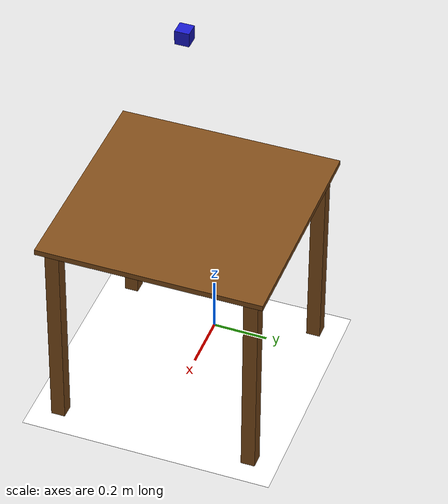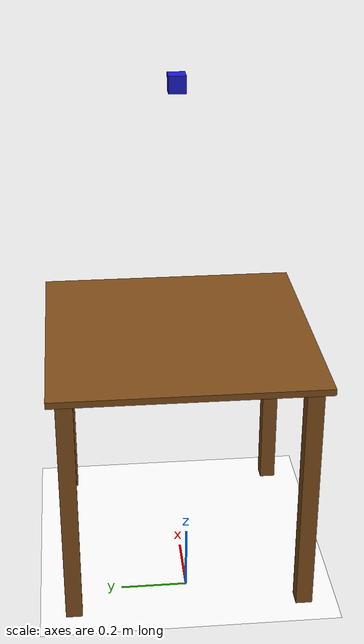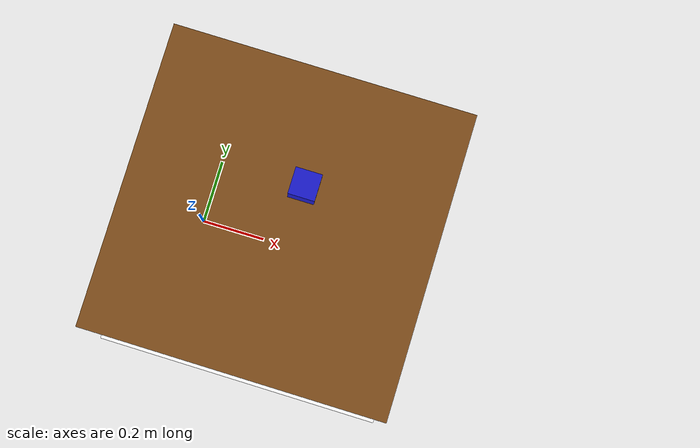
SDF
<?xml version="1.0"?>
<sdf version="1.9">
  <world name="manipulator_world">

    <physics name="1ms" type="ignored">
      <max_step_size>0.001</max_step_size>
      <real_time_factor>1.0</real_time_factor>
    </physics>

    <plugin filename="gz-sim-physics-system"
            name="gz::sim::systems::Physics"/>
    <plugin filename="gz-sim-user-commands-system"
            name="gz::sim::systems::UserCommands"/>
    <plugin filename="gz-sim-scene-broadcaster-system"
            name="gz::sim::systems::SceneBroadcaster"/>
    <plugin filename="gz-sim-sensors-system"
            name="gz::sim::systems::Sensors">
      <render_engine>ogre2</render_engine>
    </plugin>

    <!-- Ambient light -->
    <scene>
      <ambient>1.0 1.0 1.0 1.0</ambient>
      <background>0.9 0.9 0.9 1.0</background>
      <shadows>true</shadows>
    </scene>

    <!-- Sun -->
    <light name="sun" type="directional">
      <cast_shadows>true</cast_shadows>
      <pose>0 0 10 0 0 0</pose>
      <diffuse>1.0 1.0 1.0 1</diffuse>
      <specular>0.5 0.5 0.5 1</specular>
      <direction>-0.3 0.1 -0.9</direction>
    </light>

    <!-- Extra light from above -->
    <light name="top_light" type="point">
      <pose>0 0 3 0 0 0</pose>
      <diffuse>0.8 0.8 0.8 1</diffuse>
      <specular>0.2 0.2 0.2 1</specular>
      <attenuation>
        <range>10</range>
        <constant>0.5</constant>
        <linear>0.01</linear>
        <quadratic>0.001</quadratic>
      </attenuation>
    </light>

    <!-- White Ground -->
    <model name="ground_plane">
      <static>true</static>
      <link name="link">
        <collision name="collision">
          <geometry>
            <plane>
              <normal>0 0 1</normal>
              <size>20 20</size>
            </plane>
          </geometry>
        </collision>
        <visual name="visual">
          <geometry>
            <plane>
              <normal>0 0 1</normal>
              <size>20 20</size>
            </plane>
          </geometry>
          <material>
            <ambient>1.0 1.0 1.0 1</ambient>
            <diffuse>1.0 1.0 1.0 1</diffuse>
            <specular>0.5 0.5 0.5 1</specular>
          </material>
        </visual>
      </link>
    </model>

    <!-- Table -->
    <model name="table">
      <static>true</static>
      <pose>0.25 0 0 0 0 0</pose>
      <link name="link">

        <!-- Table Top -->
        <collision name="top_collision">
          <pose>0 0 0.75 0 0 0</pose>
          <geometry><box><size>0.8 0.8 0.02</size></box></geometry>
        </collision>
        <visual name="top_visual">
          <pose>0 0 0.75 0 0 0</pose>
          <geometry><box><size>0.8 0.8 0.02</size></box></geometry>
          <material>
            <ambient>0.5 0.3 0.1 1</ambient>
            <diffuse>0.5 0.3 0.1 1</diffuse>
          </material>
        </visual>

        <!-- Leg 1 -->
        <collision name="leg1"><pose>0.35 0.35 0.375 0 0 0</pose><geometry><box><size>0.05 0.05 0.75</size></box></geometry></collision>
        <visual name="leg1_v"><pose>0.35 0.35 0.375 0 0 0</pose><geometry><box><size>0.05 0.05 0.75</size></box></geometry><material><ambient>0.5 0.3 0.1 1</ambient></material></visual>

        <!-- Leg 2 -->
        <collision name="leg2"><pose>-0.35 0.35 0.375 0 0 0</pose><geometry><box><size>0.05 0.05 0.75</size></box></geometry></collision>
        <visual name="leg2_v"><pose>-0.35 0.35 0.375 0 0 0</pose><geometry><box><size>0.05 0.05 0.75</size></box></geometry><material><ambient>0.5 0.3 0.1 1</ambient></material></visual>

        <!-- Leg 3 -->
        <collision name="leg3"><pose>0.35 -0.35 0.375 0 0 0</pose><geometry><box><size>0.05 0.05 0.75</size></box></geometry></collision>
        <visual name="leg3_v"><pose>0.35 -0.35 0.375 0 0 0</pose><geometry><box><size>0.05 0.05 0.75</size></box></geometry><material><ambient>0.5 0.3 0.1 1</ambient></material></visual>

        <!-- Leg 4 -->
        <collision name="leg4"><pose>-0.35 -0.35 0.375 0 0 0</pose><geometry><box><size>0.05 0.05 0.75</size></box></geometry></collision>
        <visual name="leg4_v"><pose>-0.35 -0.35 0.375 0 0 0</pose><geometry><box><size>0.05 0.05 0.75</size></box></geometry><material><ambient>0.5 0.3 0.1 1</ambient></material></visual>

      </link>
    </model>

    <!-- Overhead RGB Camera (simulates RPi Camera) -->
    <model name="overhead_camera">
      <static>true</static>
      <pose>0.3 0 1.5 0 1.5708 0</pose>

      <link name="camera_link">

        <visual name="visual">
          <geometry>
            <box><size>0.05 0.05 0.05</size></box>
          </geometry>
          <material>
            <ambient>0.1 0.1 0.8 1</ambient>
            <diffuse>0.1 0.1 0.8 1</diffuse>
          </material>
        </visual>

        <sensor name="overhead_camera" type="camera">
          <pose>0 0 0 0 0 0</pose>
          <always_on>true</always_on>
          <update_rate>30</update_rate>
          <visualize>true</visualize>
          <topic>/gz/camera</topic>

          <camera>
            <!-- RPi Camera v2 specs -->
            <horizontal_fov>1.0855</horizontal_fov>
            <image>
              <width>1280</width>
              <height>720</height>
              <format>RGB_INT8</format>
            </image>
            <clip>
              <near>0.1</near>
              <far>10.0</far>
            </clip>
            <noise>
              <type>gaussian</type>
              <mean>0.0</mean>
              <stddev>0.005</stddev>
            </noise>
          </camera>

        </sensor>

      </link>
    </model>

  </world>
</sdf>
